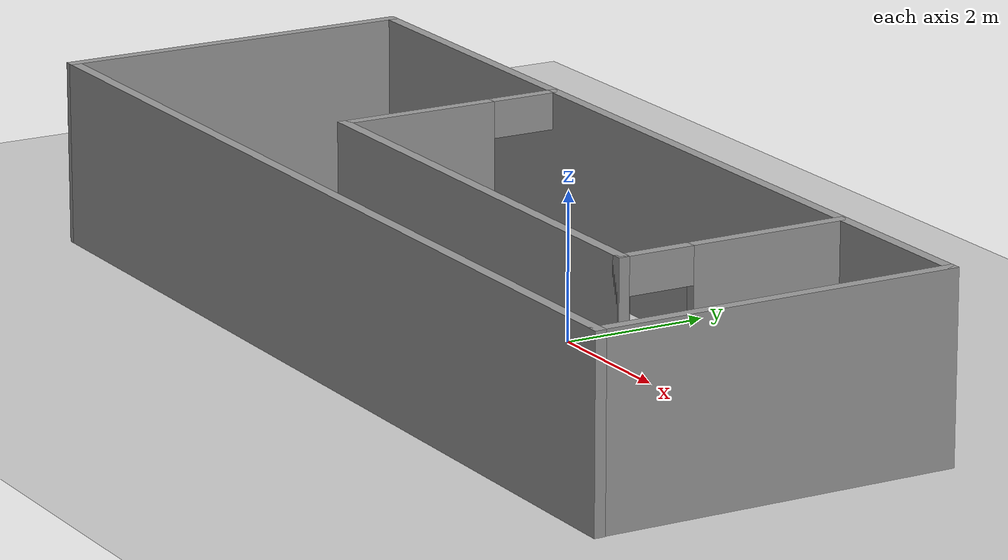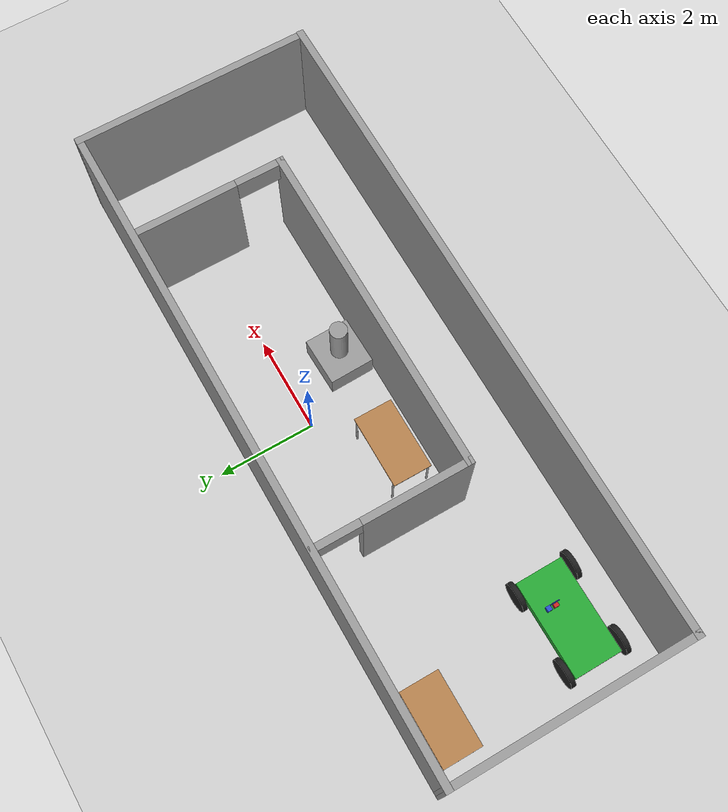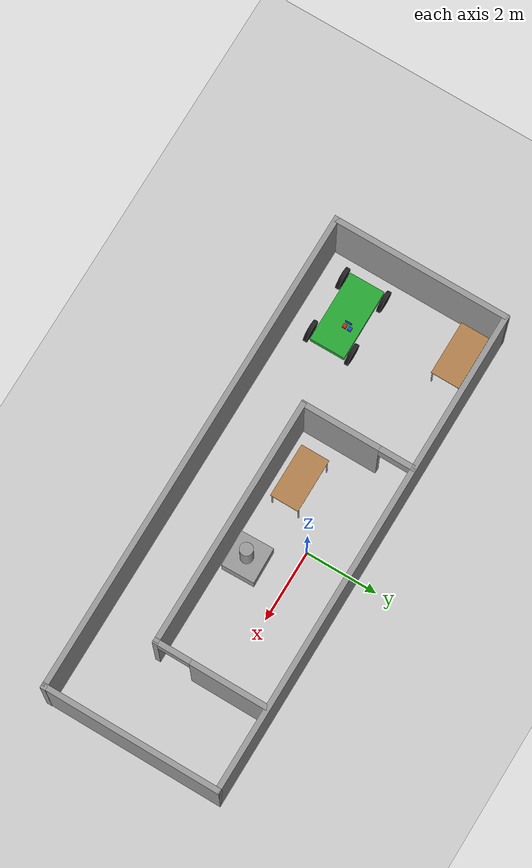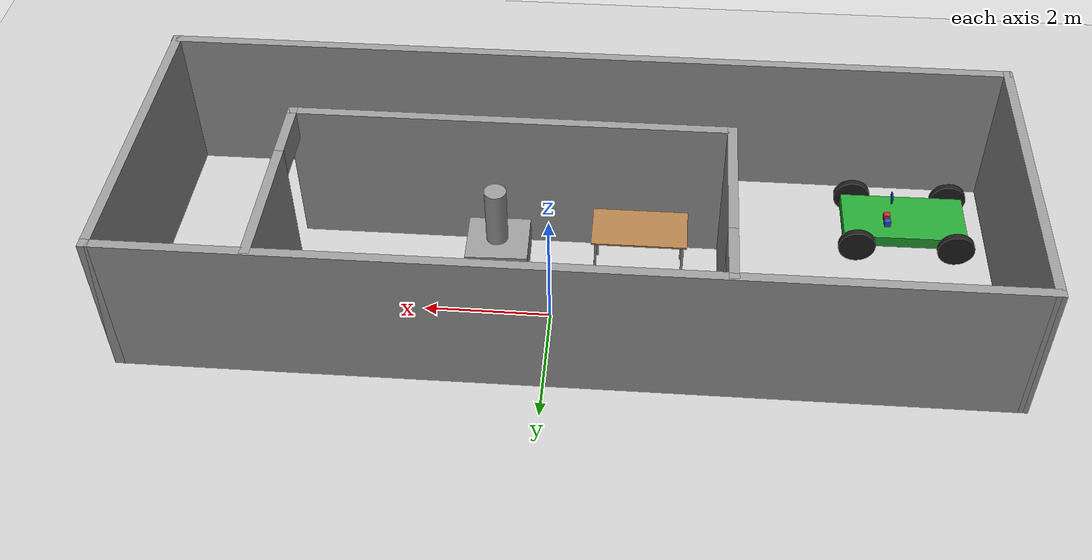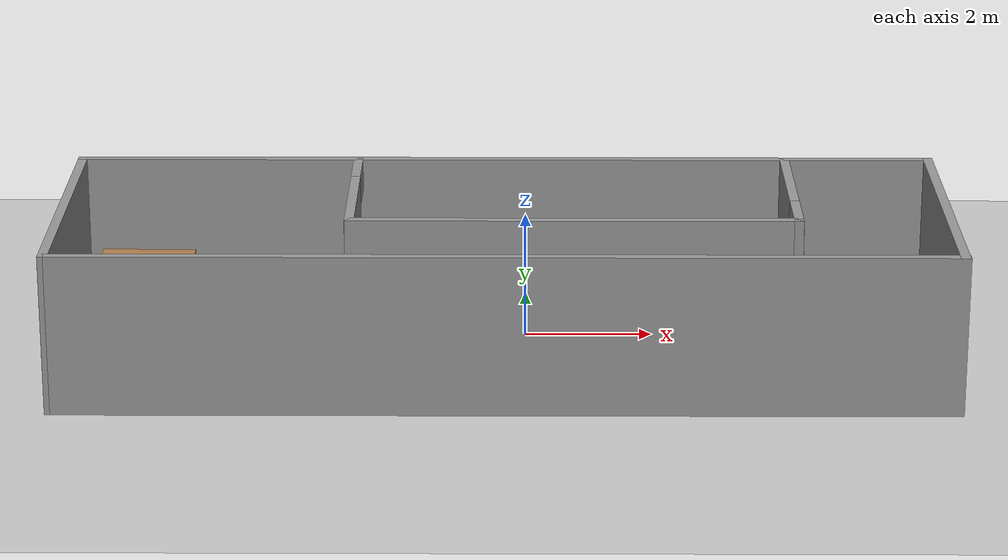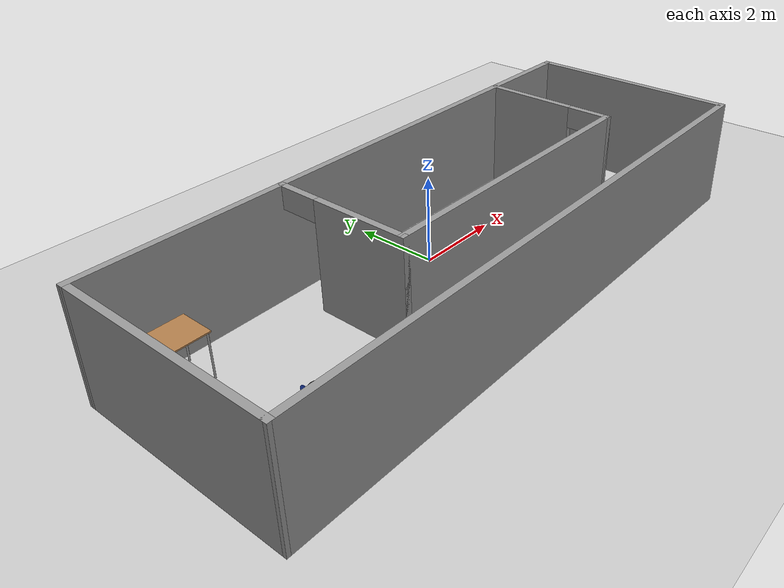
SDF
<sdf version="1.7">
 <world name="default">
  <plugin name="gazebo_ros_state" filename="libgazebo_ros_state.so">
   <ros><namespace>/gazebo</namespace></ros>
  </plugin>
  <physics type="ode">
   <max_step_size>0.001</max_step_size>
   <real_time_factor>1</real_time_factor>
   <real_time_update_rate>1000</real_time_update_rate>
   <ode>
    <solver>
     <type>quick</type>
     <iters>150</iters>
     <sor>1.3</sor>
     <use_dynamic_moi_rescaling>0</use_dynamic_moi_rescaling>
    </solver>
    <constraints>
     <cfm>1e-06</cfm>
     <erp>0.8</erp>
     <contact_max_correcting_vel>0.1</contact_max_correcting_vel>
     <contact_surface_layer>0.005</contact_surface_layer>
    </constraints>
   </ode>
   <gravity>0 0 -9.8</gravity>
  </physics>
  <scene>
   <sky><clouds><speed>12</speed></clouds></sky>
   <ambient>0.4 0.4 0.4 1</ambient>
   <background>0.7 0.7 0.7 1</background>
   <shadows>1</shadows>
  </scene>
  <light name="sun" type="directional">
   <pose>0 0 10 0 -0 0</pose>
   <diffuse>0.8 0.8 0.8 1</diffuse>
   <specular>0.2 0.2 0.2 1</specular>
   <attenuation>
    <range>1000</range>
    <constant>0.9</constant>
    <linear>0.01</linear>
    <quadratic>0.001</quadratic>
   </attenuation>
   <direction>-0.5 0.1 -0.9</direction>
   <spot><inner_angle>0</inner_angle><outer_angle>0</outer_angle><falloff>0</falloff></spot>
  </light>
  <model name="ground_plane">
   <static>1</static>
   <link name="link">
    <collision name="collision">
     <geometry><plane><normal>0 0 1</normal><size>100 100</size></plane></geometry>
     <surface>
      <contact><collide_bitmask>65535</collide_bitmask></contact>
      <friction><ode><mu>100</mu><mu2>50</mu2></ode></friction>
     </surface>
    </collision>
    <visual name="visual">
     <cast_shadows>0</cast_shadows>
     <geometry><plane><normal>0 0 1</normal><size>100 100</size></plane></geometry>
     <material>
      <script><uri>file://media/materials/scripts/gazebo.material</uri><name>Gazebo/Grey</name></script>
     </material>
    </visual>
   </link>
  </model>
  <gravity>0 0 -9.81</gravity>
  <magnetic_field>6e-06 2.3e-05 -4.2e-05</magnetic_field>
  <atmosphere type="adiabatic"/>
  <audio><device>default</device></audio>
  <spherical_coordinates>
   <surface_model>EARTH_WGS84</surface_model>
   <latitude_deg>0</latitude_deg>
   <longitude_deg>0</longitude_deg>
   <elevation>0</elevation>
   <heading_deg>0</heading_deg>
  </spherical_coordinates>
  <model name="world1.world">
   <pose>-0.325077 -1.045 0 0 -0 0</pose>
   <link name="Wall_12">
    <collision name="Wall_12_Collision">
     <geometry><box><size>13.75 0.15 2.5</size></box></geometry>
     <pose>0 0 1.25 0 -0 0</pose>
    </collision>
    <visual name="Wall_12_Visual">
     <pose>0 0 1.25 0 -0 0</pose>
     <geometry><box><size>13.75 0.15 2.5</size></box></geometry>
     <material>
      <script><uri>file://media/materials/scripts/gazebo.material</uri><name>Gazebo/Grey</name></script>
      <ambient>1 1 1 1</ambient>
     </material>
     <meta><layer>0</layer></meta>
    </visual>
    <pose>-0.004923 2.425 0 0 -0 0</pose>
   </link>
   <link name="Wall_13">
    <collision name="Wall_13_Collision">
     <geometry><box><size>5 0.15 2.5</size></box></geometry>
     <pose>0 0 1.25 0 -0 0</pose>
    </collision>
    <visual name="Wall_13_Visual">
     <pose>0 0 1.25 0 -0 0</pose>
     <geometry><box><size>5 0.15 2.5</size></box></geometry>
     <material>
      <script><uri>file://media/materials/scripts/gazebo.material</uri><name>Gazebo/Grey</name></script>
      <ambient>1 1 1 1</ambient>
     </material>
     <meta><layer>0</layer></meta>
    </visual>
    <pose>6.79508 -0 0 0 -0 -1.5708</pose>
   </link>
   <link name="Wall_14">
    <collision name="Wall_14_Collision">
     <geometry><box><size>0.16 0.15 2.5</size></box></geometry>
     <pose>0 0 1.25 0 -0 0</pose>
    </collision>
    <visual name="Wall_14_Visual">
     <pose>0 0 1.25 0 -0 0</pose>
     <geometry><box><size>0.16 0.15 2.5</size></box></geometry>
     <material>
      <script><uri>file://media/materials/scripts/gazebo.material</uri><name>Gazebo/Grey</name></script>
      <ambient>1 1 1 1</ambient>
     </material>
     <meta><layer>0</layer></meta>
    </visual>
    <pose>6.80008 -2.425 0 0 -0 0</pose>
   </link>
   <link name="Wall_15">
    <collision name="Wall_15_Collision">
     <geometry><box><size>13.75 0.15 2.5</size></box></geometry>
     <pose>0 0 1.25 0 -0 0</pose>
    </collision>
    <visual name="Wall_15_Visual">
     <pose>0 0 1.25 0 -0 0</pose>
     <geometry><box><size>13.75 0.15 2.5</size></box></geometry>
     <material>
      <script><uri>file://media/materials/scripts/gazebo.material</uri><name>Gazebo/Grey</name></script>
      <ambient>1 1 1 1</ambient>
     </material>
     <meta><layer>0</layer></meta>
    </visual>
    <pose>0.005077 -2.425 0 0 -0 3.14159</pose>
   </link>
   <link name="Wall_16">
    <collision name="Wall_16_Collision">
     <geometry><box><size>5.00001 0.15 2.5</size></box></geometry>
     <pose>0 0 1.25 0 -0 0</pose>
    </collision>
    <visual name="Wall_16_Visual">
     <pose>0 0 1.25 0 -0 0</pose>
     <geometry><box><size>5.00001 0.15 2.5</size></box></geometry>
     <material>
      <script><uri>file://media/materials/scripts/gazebo.material</uri><name>Gazebo/Grey</name></script>
      <ambient>1 1 1 1</ambient>
     </material>
     <meta><layer>0</layer></meta>
    </visual>
    <pose>-6.79992 -0 0 0 -0 1.57286</pose>
   </link>
   <link name="Wall_18">
    <pose>-2.36492 0.845 0 0 -0 -1.5708</pose>
    <visual name="Wall_18_Visual_0">
     <pose>-1.5725 0 1.25 0 -0 0</pose>
     <geometry><box><size>0.105 0.15 2.5</size></box></geometry>
     <material>
      <script><uri>file://media/materials/scripts/gazebo.material</uri><name>Gazebo/Grey</name></script>
      <ambient>1 1 1 1</ambient>
     </material>
     <meta><layer>0</layer></meta>
    </visual>
    <collision name="Wall_18_Collision_0">
     <geometry><box><size>0.105 0.15 2.5</size></box></geometry>
     <pose>-1.5725 0 1.25 0 -0 0</pose>
    </collision>
    <visual name="Wall_18_Visual_1">
     <pose>0.5025 0 1.25 0 -0 0</pose>
     <geometry><box><size>2.245 0.15 2.5</size></box></geometry>
     <material>
      <script><uri>file://media/materials/scripts/gazebo.material</uri><name>Gazebo/Grey</name></script>
      <ambient>1 1 1 1</ambient>
     </material>
     <meta><layer>0</layer></meta>
    </visual>
    <collision name="Wall_18_Collision_1">
     <geometry><box><size>2.245 0.15 2.5</size></box></geometry>
     <pose>0.5025 0 1.25 0 -0 0</pose>
    </collision>
    <visual name="Wall_18_Visual_2">
     <pose>-1.07 0 2.25 0 -0 0</pose>
     <geometry><box><size>0.9 0.15 0.5</size></box></geometry>
     <material>
      <script><uri>file://media/materials/scripts/gazebo.material</uri><name>Gazebo/Grey</name></script>
      <ambient>1 1 1 1</ambient>
     </material>
     <meta><layer>0</layer></meta>
    </visual>
    <collision name="Wall_18_Collision_2">
     <geometry><box><size>0.9 0.15 0.5</size></box></geometry>
     <pose>-1.07 0 2.25 0 -0 0</pose>
    </collision>
   </link>
   <link name="Wall_19">
    <collision name="Wall_19_Collision">
     <geometry><box><size>7 0.15 2.5</size></box></geometry>
     <pose>0 0 1.25 0 -0 0</pose>
    </collision>
    <visual name="Wall_19_Visual">
     <pose>0 0 1.25 0 -0 0</pose>
     <geometry><box><size>7 0.15 2.5</size></box></geometry>
     <material>
      <script><uri>file://media/materials/scripts/gazebo.material</uri><name>Gazebo/Grey</name></script>
      <ambient>1 1 1 1</ambient>
     </material>
     <meta><layer>0</layer></meta>
    </visual>
    <pose>1.06008 -0.705 0 0 -0 0</pose>
   </link>
   <link name="Wall_20">
    <pose>4.48508 0.845 0 0 -0 1.5708</pose>
    <visual name="Wall_20_Visual_0">
     <pose>-1.5525 0 1.25 0 -0 0</pose>
     <geometry><box><size>0.145 0.15 2.5</size></box></geometry>
     <material>
      <script><uri>file://media/materials/scripts/gazebo.material</uri><name>Gazebo/Grey</name></script>
      <ambient>1 1 1 1</ambient>
     </material>
     <meta><layer>0</layer></meta>
    </visual>
    <collision name="Wall_20_Collision_0">
     <geometry><box><size>0.145 0.15 2.5</size></box></geometry>
     <pose>-1.5525 0 1.25 0 -0 0</pose>
    </collision>
    <visual name="Wall_20_Visual_1">
     <pose>0.5225 0 1.25 0 -0 0</pose>
     <geometry><box><size>2.205 0.15 2.5</size></box></geometry>
     <material>
      <script><uri>file://media/materials/scripts/gazebo.material</uri><name>Gazebo/Grey</name></script>
      <ambient>1 1 1 1</ambient>
     </material>
     <meta><layer>0</layer></meta>
    </visual>
    <collision name="Wall_20_Collision_1">
     <geometry><box><size>2.205 0.15 2.5</size></box></geometry>
     <pose>0.5225 0 1.25 0 -0 0</pose>
    </collision>
    <visual name="Wall_20_Visual_2">
     <pose>-1.03 0 2.25 0 -0 0</pose>
     <geometry><box><size>0.9 0.15 0.5</size></box></geometry>
     <material>
      <script><uri>file://media/materials/scripts/gazebo.material</uri><name>Gazebo/Grey</name></script>
      <ambient>1 1 1 1</ambient>
     </material>
     <meta><layer>0</layer></meta>
    </visual>
    <collision name="Wall_20_Collision_2">
     <geometry><box><size>0.9 0.15 0.5</size></box></geometry>
     <pose>-1.03 0 2.25 0 -0 0</pose>
    </collision>
   </link>
   <static>1</static>
  </model>
  <model name="table">
   <static>1</static>
   <link name="link">
    <collision name="surface">
     <pose>0 0 1 0 -0 0</pose>
     <geometry><box><size>1.5 0.8 0.03</size></box></geometry>
     <surface><friction><ode><mu>0.6</mu><mu2>0.6</mu2></ode></friction></surface>
    </collision>
    <visual name="visual1">
     <pose>0 0 1 0 -0 0</pose>
     <geometry><box><size>1.5 0.8 0.03</size></box></geometry>
     <material>
      <script><uri>file://media/materials/scripts/gazebo.material</uri><name>Gazebo/Wood</name></script>
     </material>
    </visual>
    <collision name="front_left_leg">
     <pose>0.68 0.38 0.5 0 -0 0</pose>
     <geometry><cylinder><radius>0.02</radius><length>1</length></cylinder></geometry>
    </collision>
    <visual name="front_left_leg">
     <pose>0.68 0.38 0.5 0 -0 0</pose>
     <geometry><cylinder><radius>0.02</radius><length>1</length></cylinder></geometry>
     <material>
      <script><uri>file://media/materials/scripts/gazebo.material</uri><name>Gazebo/Grey</name></script>
     </material>
    </visual>
    <collision name="front_right_leg">
     <pose>0.68 -0.38 0.5 0 -0 0</pose>
     <geometry><cylinder><radius>0.02</radius><length>1</length></cylinder></geometry>
    </collision>
    <visual name="front_right_leg">
     <pose>0.68 -0.38 0.5 0 -0 0</pose>
     <geometry><cylinder><radius>0.02</radius><length>1</length></cylinder></geometry>
     <material>
      <script><uri>file://media/materials/scripts/gazebo.material</uri><name>Gazebo/Grey</name></script>
     </material>
    </visual>
    <collision name="back_right_leg">
     <pose>-0.68 -0.38 0.5 0 -0 0</pose>
     <geometry><cylinder><radius>0.02</radius><length>1</length></cylinder></geometry>
    </collision>
    <visual name="back_right_leg">
     <pose>-0.68 -0.38 0.5 0 -0 0</pose>
     <geometry><cylinder><radius>0.02</radius><length>1</length></cylinder></geometry>
     <material>
      <script><uri>file://media/materials/scripts/gazebo.material</uri><name>Gazebo/Grey</name></script>
     </material>
    </visual>
    <collision name="back_left_leg">
     <pose>-0.68 0.38 0.5 0 -0 0</pose>
     <geometry><cylinder><radius>0.02</radius><length>1</length></cylinder></geometry>
    </collision>
    <visual name="back_left_leg">
     <pose>-0.68 0.38 0.5 0 -0 0</pose>
     <geometry><cylinder><radius>0.02</radius><length>1</length></cylinder></geometry>
     <material>
      <script><uri>file://media/materials/scripts/gazebo.material</uri><name>Gazebo/Grey</name></script>
     </material>
    </visual>
   </link>
   <pose>-1.34051 -1.02622 0 0 -0 0</pose>
  </model>
  <model name="table_0">
   <static>1</static>
   <link name="link">
    <collision name="surface">
     <pose>0 0 1 0 -0 0</pose>
     <geometry><box><size>1.5 0.8 0.03</size></box></geometry>
     <surface><friction><ode><mu>0.6</mu><mu2>0.6</mu2></ode></friction></surface>
    </collision>
    <visual name="visual1">
     <pose>0 0 1 0 -0 0</pose>
     <geometry><box><size>1.5 0.8 0.03</size></box></geometry>
     <material>
      <script><uri>file://media/materials/scripts/gazebo.material</uri><name>Gazebo/Wood</name></script>
     </material>
    </visual>
    <collision name="front_left_leg">
     <pose>0.68 0.38 0.5 0 -0 0</pose>
     <geometry><cylinder><radius>0.02</radius><length>1</length></cylinder></geometry>
    </collision>
    <visual name="front_left_leg">
     <pose>0.68 0.38 0.5 0 -0 0</pose>
     <geometry><cylinder><radius>0.02</radius><length>1</length></cylinder></geometry>
     <material>
      <script><uri>file://media/materials/scripts/gazebo.material</uri><name>Gazebo/Grey</name></script>
     </material>
    </visual>
    <collision name="front_right_leg">
     <pose>0.68 -0.38 0.5 0 -0 0</pose>
     <geometry><cylinder><radius>0.02</radius><length>1</length></cylinder></geometry>
    </collision>
    <visual name="front_right_leg">
     <pose>0.68 -0.38 0.5 0 -0 0</pose>
     <geometry><cylinder><radius>0.02</radius><length>1</length></cylinder></geometry>
     <material>
      <script><uri>file://media/materials/scripts/gazebo.material</uri><name>Gazebo/Grey</name></script>
     </material>
    </visual>
    <collision name="back_right_leg">
     <pose>-0.68 -0.38 0.5 0 -0 0</pose>
     <geometry><cylinder><radius>0.02</radius><length>1</length></cylinder></geometry>
    </collision>
    <visual name="back_right_leg">
     <pose>-0.68 -0.38 0.5 0 -0 0</pose>
     <geometry><cylinder><radius>0.02</radius><length>1</length></cylinder></geometry>
     <material>
      <script><uri>file://media/materials/scripts/gazebo.material</uri><name>Gazebo/Grey</name></script>
     </material>
    </visual>
    <collision name="back_left_leg">
     <pose>-0.68 0.38 0.5 0 -0 0</pose>
     <geometry><cylinder><radius>0.02</radius><length>1</length></cylinder></geometry>
    </collision>
    <visual name="back_left_leg">
     <pose>-0.68 0.38 0.5 0 -0 0</pose>
     <geometry><cylinder><radius>0.02</radius><length>1</length></cylinder></geometry>
     <material>
      <script><uri>file://media/materials/scripts/gazebo.material</uri><name>Gazebo/Grey</name></script>
     </material>
    </visual>
   </link>
   <pose>-6.08584 0.782727 0 0 -0 0</pose>
  </model>
  <model name="car">
   <link name="chassis">
    <pose>0 0 0.3 0 -0 0</pose>
    <collision name="collision"><geometry><box><size>2 1 0.2</size></box></geometry></collision>
    <visual name="visual">
     <geometry><box><size>2 1 0.2</size></box></geometry>
     <material>
      <script><uri>file://media/materials/scripts/gazebo.material</uri><name>Gazebo/Green</name></script>
     </material>
    </visual>
    <inertial>
     <inertia><ixx>1</ixx><ixy>0</ixy><ixz>0</ixz><iyy>1</iyy><iyz>0</iyz><izz>1</izz></inertia>
     <mass>1</mass>
    </inertial>
   </link>
   <link name="front_left_wheel">
    <pose>0.8 0.6 0.3 -0 1.5707 1.5707</pose>
    <collision name="collision">
     <geometry><cylinder><radius>0.3</radius><length>0.1</length></cylinder></geometry>
    </collision>
    <visual name="visual">
     <geometry><cylinder><radius>0.3</radius><length>0.1</length></cylinder></geometry>
     <material>
      <script><uri>file://media/materials/scripts/gazebo.material</uri><name>Gazebo/Black</name></script>
     </material>
    </visual>
    <inertial>
     <inertia><ixx>1</ixx><ixy>0</ixy><ixz>0</ixz><iyy>1</iyy><iyz>0</iyz><izz>1</izz></inertia>
     <mass>1</mass>
    </inertial>
   </link>
   <link name="front_right_wheel">
    <pose>0.8 -0.6 0.3 -0 1.5707 1.5707</pose>
    <collision name="collision">
     <geometry><cylinder><radius>0.3</radius><length>0.1</length></cylinder></geometry>
    </collision>
    <visual name="visual">
     <geometry><cylinder><radius>0.3</radius><length>0.1</length></cylinder></geometry>
     <material>
      <script><uri>file://media/materials/scripts/gazebo.material</uri><name>Gazebo/Black</name></script>
     </material>
    </visual>
    <inertial>
     <inertia><ixx>1</ixx><ixy>0</ixy><ixz>0</ixz><iyy>1</iyy><iyz>0</iyz><izz>1</izz></inertia>
     <mass>1</mass>
    </inertial>
   </link>
   <link name="back_right_wheel">
    <pose>-0.8 -0.6 0.3 -0 1.5707 1.5707</pose>
    <collision name="collision">
     <geometry><cylinder><radius>0.3</radius><length>0.1</length></cylinder></geometry>
    </collision>
    <visual name="visual">
     <geometry><cylinder><radius>0.3</radius><length>0.1</length></cylinder></geometry>
     <material>
      <script><uri>file://media/materials/scripts/gazebo.material</uri><name>Gazebo/Black</name></script>
     </material>
    </visual>
    <inertial>
     <inertia><ixx>1</ixx><ixy>0</ixy><ixz>0</ixz><iyy>1</iyy><iyz>0</iyz><izz>1</izz></inertia>
     <mass>1</mass>
    </inertial>
   </link>
   <link name="back_left_wheel">
    <pose>-0.8 0.6 0.3 -0 1.5707 1.5707</pose>
    <collision name="collision">
     <geometry><cylinder><radius>0.3</radius><length>0.1</length></cylinder></geometry>
    </collision>
    <visual name="visual">
     <geometry><cylinder><radius>0.3</radius><length>0.1</length></cylinder></geometry>
     <material>
      <script><uri>file://media/materials/scripts/gazebo.material</uri><name>Gazebo/Black</name></script>
     </material>
    </visual>
    <inertial>
     <inertia><ixx>1</ixx><ixy>0</ixy><ixz>0</ixz><iyy>1</iyy><iyz>0</iyz><izz>1</izz></inertia>
     <mass>1</mass>
    </inertial>
   </link>
   <link name="gas_pedal">
    <pose>0.3 0.1 0.5 0 -0 0</pose>
    <collision name="collision"><geometry><box><size>0.1 0.1 0.1</size></box></geometry></collision>
    <visual name="visual">
     <geometry><box><size>0.1 0.1 0.1</size></box></geometry>
     <material>
      <script><uri>file://media/materials/scripts/gazebo.material</uri><name>Gazebo/Red</name></script>
     </material>
    </visual>
    <inertial>
     <inertia><ixx>1</ixx><ixy>0</ixy><ixz>0</ixz><iyy>1</iyy><iyz>0</iyz><izz>1</izz></inertia>
     <mass>1</mass>
    </inertial>
   </link>
   <link name="brake_pedal">
    <pose>0.3 0.25 0.5 0 -0 0</pose>
    <collision name="collision"><geometry><box><size>0.1 0.1 0.1</size></box></geometry></collision>
    <visual name="visual">
     <geometry><box><size>0.1 0.1 0.1</size></box></geometry>
     <material>
      <script><uri>file://media/materials/scripts/gazebo.material</uri><name>Gazebo/Blue</name></script>
     </material>
    </visual>
    <inertial>
     <inertia><ixx>1</ixx><ixy>0</ixy><ixz>0</ixz><iyy>1</iyy><iyz>0</iyz><izz>1</izz></inertia>
     <mass>1</mass>
    </inertial>
   </link>
   <link name="steering_wheel">
    <pose>0.3 0.2 1 0 1.5707 0</pose>
    <collision name="collision">
     <geometry><cylinder><radius>0.1</radius><length>0.01</length></cylinder></geometry>
    </collision>
    <visual name="visual">
     <geometry><cylinder><radius>0.1</radius><length>0.01</length></cylinder></geometry>
     <material>
      <script><uri>file://media/materials/scripts/gazebo.material</uri><name>Gazebo/Blue</name></script>
     </material>
    </visual>
    <inertial>
     <inertia><ixx>1</ixx><ixy>0</ixy><ixz>0</ixz><iyy>1</iyy><iyz>0</iyz><izz>1</izz></inertia>
     <mass>1</mass>
    </inertial>
   </link>
   <joint name="gas_joint" type="prismatic">
    <parent>chassis</parent>
    <child>gas_pedal</child>
    <axis>
     <xyz expressed_in="__model__">1 0 0</xyz>
     <limit><lower>0</lower><upper>0.2</upper></limit>
     <dynamics><spring_reference>0</spring_reference><spring_stiffness>0</spring_stiffness></dynamics>
    </axis>
   </joint>
   <joint name="brake_joint" type="prismatic">
    <parent>chassis</parent>
    <child>brake_pedal</child>
    <axis>
     <xyz expressed_in="__model__">1 0 0</xyz>
     <limit><lower>0</lower><upper>0.2</upper></limit>
     <dynamics><spring_reference>0</spring_reference><spring_stiffness>0</spring_stiffness></dynamics>
    </axis>
   </joint>
   <joint name="steering_joint" type="revolute">
    <parent>chassis</parent>
    <child>steering_wheel</child>
    <axis>
     <xyz expressed_in="__model__">1 0 0</xyz>
     <limit><lower>-7.853</lower><upper>7.853</upper></limit>
     <dynamics><spring_reference>0</spring_reference><spring_stiffness>0</spring_stiffness></dynamics>
    </axis>
   </joint>
   <joint name="front_left_joint" type="revolute2">
    <parent>chassis</parent>
    <child>front_left_wheel</child>
    <axis>
     <xyz expressed_in="__model__">0 0 1</xyz>
     <limit><lower>1.16492e-07</lower><upper>1.16492e-07</upper></limit>
     <dynamics><spring_reference>0</spring_reference><spring_stiffness>0</spring_stiffness></dynamics>
    </axis>
    <axis2>
     <xyz expressed_in="__model__">0 1 0</xyz>
     <limit><upper>1e+16</upper><lower>-1e+16</lower></limit>
     <dynamics><spring_reference>0</spring_reference><spring_stiffness>0</spring_stiffness></dynamics>
    </axis2>
    <physics><ode><limit><cfm>0</cfm><erp>0.9</erp></limit></ode></physics>
   </joint>
   <joint name="front_right_joint" type="revolute2">
    <parent>chassis</parent>
    <child>front_right_wheel</child>
    <axis>
     <xyz expressed_in="__model__">0 0 1</xyz>
     <limit><lower>1.16492e-07</lower><upper>1.16492e-07</upper></limit>
     <dynamics><spring_reference>0</spring_reference><spring_stiffness>0</spring_stiffness></dynamics>
    </axis>
    <axis2>
     <xyz expressed_in="__model__">0 1 0</xyz>
     <limit><upper>1e+16</upper><lower>-1e+16</lower></limit>
     <dynamics><spring_reference>0</spring_reference><spring_stiffness>0</spring_stiffness></dynamics>
    </axis2>
    <physics><ode><limit><cfm>0</cfm><erp>0.9</erp></limit></ode></physics>
   </joint>
   <joint name="back_right_joint" type="revolute2">
    <parent>chassis</parent>
    <child>back_right_wheel</child>
    <axis>
     <xyz expressed_in="__model__">0 0 1</xyz>
     <limit><lower>0</lower><upper>0</upper></limit>
     <dynamics><spring_reference>0</spring_reference><spring_stiffness>0</spring_stiffness></dynamics>
    </axis>
    <axis2>
     <xyz expressed_in="__model__">0 1 0</xyz>
     <limit><upper>1e+16</upper><lower>-1e+16</lower></limit>
     <dynamics><spring_reference>0</spring_reference><spring_stiffness>0</spring_stiffness></dynamics>
    </axis2>
    <physics><ode><limit><cfm>0</cfm><erp>0.9</erp></limit></ode></physics>
   </joint>
   <joint name="back_left_joint" type="revolute2">
    <parent>chassis</parent>
    <child>back_left_wheel</child>
    <axis>
     <xyz expressed_in="__model__">0 0 1</xyz>
     <limit><lower>0</lower><upper>0</upper></limit>
     <dynamics><spring_reference>0</spring_reference><spring_stiffness>0</spring_stiffness></dynamics>
    </axis>
    <axis2>
     <xyz expressed_in="__model__">0 1 0</xyz>
     <limit><upper>1e+16</upper><lower>-1e+16</lower></limit>
     <dynamics><spring_reference>0</spring_reference><spring_stiffness>0</spring_stiffness></dynamics>
    </axis2>
    <physics><ode><limit><cfm>0</cfm><erp>0.9</erp></limit></ode></physics>
   </joint>
   <plugin name="vehicle" filename="libVehiclePlugin.so">
    <front_left>front_left_joint</front_left>
    <front_right>front_right_joint</front_right>
    <back_left>back_left_joint</back_left>
    <back_right>back_right_joint</back_right>
    <gas>gas_joint</gas>
    <brake>brake_joint</brake>
    <steering>steering_joint</steering>
    <front_power>10</front_power>
    <rear_power>10</rear_power>
    <tire_angle_range>0.5</tire_angle_range>
    <max_speed>10</max_speed>
    <aero_load>0.1</aero_load>
   </plugin>
   <pose>-5.67109 -2.23179 1.5e-05 -4e-06 2e-06 0.006376</pose>
  </model>
  <model name="unit_box">
   <pose>0.93992 -1.15553 0.246396 -1.56946 0.001223 0.024976</pose>
   <link name="link">
    <inertial>
     <mass>1</mass>
     <inertia>
      <ixx>0.166667</ixx>
      <ixy>0</ixy>
      <ixz>0</ixz>
      <iyy>0.166667</iyy>
      <iyz>0</iyz>
      <izz>0.166667</izz>
     </inertia>
    </inertial>
    <collision name="collision"><geometry><box><size>1 0.536145 0.922971</size></box></geometry></collision>
    <visual name="visual">
     <geometry><box><size>1 0.536145 0.922971</size></box></geometry>
     <material>
      <script><name>Gazebo/Grey</name><uri>file://media/materials/scripts/gazebo.material</uri></script>
     </material>
    </visual>
   </link>
  </model>
  <model name="unit_cylinder">
   <pose>0.953762 -1.17108 1.01443 0.001441 0.001349 0.01256</pose>
   <link name="link">
    <inertial>
     <mass>1</mass>
     <inertia><ixx>0.145833</ixx><ixy>0</ixy><ixz>0</ixz><iyy>0.145833</iyy><iyz>0</iyz><izz>0.125</izz></inertia>
    </inertial>
    <collision name="collision">
     <geometry><cylinder><radius>0.176553</radius><length>1</length></cylinder></geometry>
    </collision>
    <visual name="visual">
     <geometry><cylinder><radius>0.176553</radius><length>1</length></cylinder></geometry>
     <material>
      <script><name>Gazebo/Grey</name><uri>file://media/materials/scripts/gazebo.material</uri></script>
     </material>
    </visual>
   </link>
  </model>
 </world>
</sdf>
